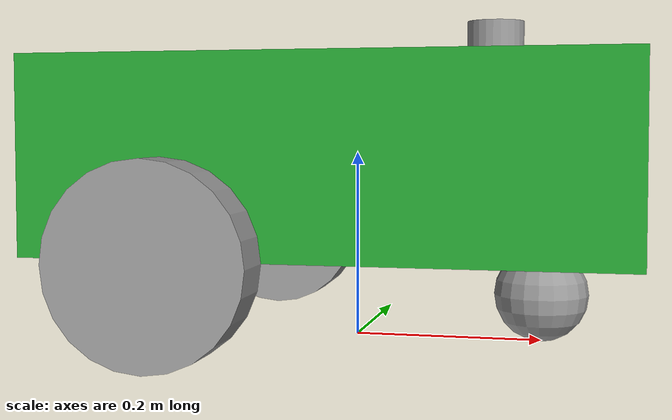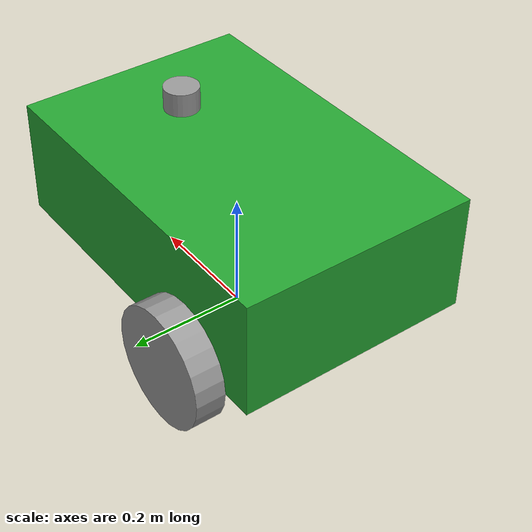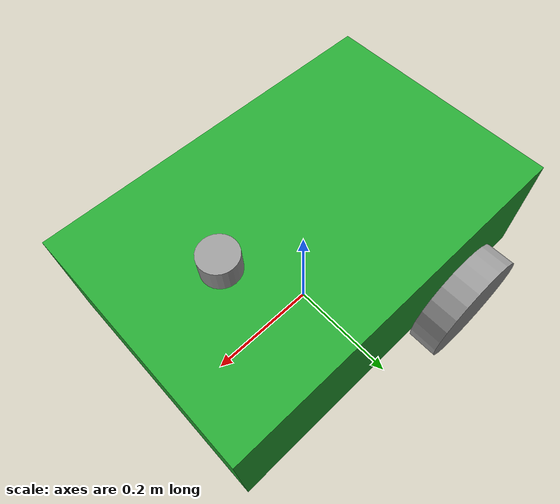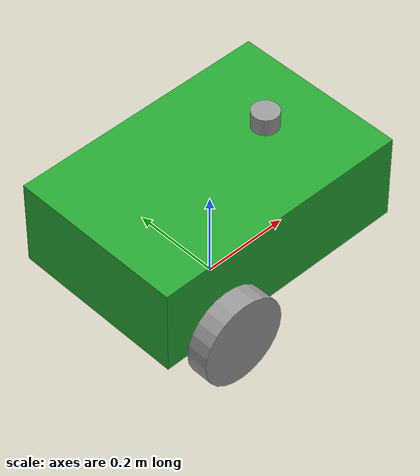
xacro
<?xml version="1.0"?>
<robot xmlns:xacro="http://www.ros.org/wiki/xacro">

    <xacro:property name="base_length" value="0.6" />
    <xacro:property name="base_width" value="0.4" />
    <xacro:property name="base_height" value="0.2" />
    <xacro:property name="wheel_radius" value="0.1" />
    <xacro:property name="wheel_length" value="0.05" />

    <link name="base_footprint" />

    <link name="base_link">
        <visual>
            <geometry>
                <box size="${base_length} ${base_width} ${base_height}" />
            </geometry>
            <origin xyz="0 0 ${base_height / 2.0}" rpy="0 0 0" />
            <material name="green" />
        </visual>
        <collision>
            <geometry>
                <box size="${base_length} ${base_width} ${base_height}" />
            </geometry>
            <origin xyz="0 0 ${base_height / 2.0}" rpy="0 0 0" />
        </collision>
        <xacro:box_inertia m="5.0" x="${base_length}" y="${base_width}" z="${base_height}"
                           o_xyz="0 0 ${base_height / 2.0}" o_rpy="0 0 0" />
    </link>

    <xacro:macro name="wheel_link" params="prefix">
        <link name="${prefix}_wheel_link">
            <visual>
                <geometry>
                    <cylinder radius="${wheel_radius}" length="${wheel_length}" />
                </geometry>
                <origin xyz="0 0 0" rpy="${pi / 2.0} 0 0" />
                <material name="gray" />
            </visual>
            <collision>
                <geometry>
                    <sphere radius="${wheel_radius}" />
                </geometry>
                <origin xyz="0 0 0" rpy="0 0 0" />
            </collision>
            <xacro:cylinder_inertia m="1.0" r="${wheel_radius}" l="${wheel_length}"
                                    o_xyz="0 0 0" o_rpy="${pi / 2.0} 0 0" />
        </link>
    </xacro:macro>

    <xacro:wheel_link prefix="right" />
    <xacro:wheel_link prefix="left" />

    <link name="caster_wheel_link">
        <visual>
            <geometry>
                <sphere radius="${wheel_radius / 2.0}" />
            </geometry>
            <origin xyz="0 0 0" rpy="0 0 0" />
            <material name="gray" />
        </visual>
        <collision>
            <geometry>
                <sphere radius="${wheel_radius / 2.0}" />
            </geometry>
            <origin xyz="0 0 0" rpy="0 0 0" />
        </collision>
        <xacro:sphere_inertia m="0.5" r="${wheel_radius / 2.0}"
                              o_xyz="0 0 0" o_rpy="0 0 0" />
    </link>

    <link name="laser_link">
        <visual>
            <geometry>
                <cylinder radius="0.03" length="0.04"/>
            </geometry>
            <origin xyz="0 0 0" rpy="0 0 0"/>
            <material name="gray"/>
        </visual>

        <collision>
            <geometry>
                <cylinder radius="0.03" length="0.04"/>
            </geometry>
            <origin xyz="0 0 0" rpy="0 0 0"/>
        </collision>

        <xacro:cylinder_inertia
            m="0.2"
            r="0.03"
            l="0.04"
            o_xyz="0 0 0"
            o_rpy="0 0 0"/>
    </link>

    <!-- LiDAR Mount -->
    <joint name="laser_joint" type="fixed">
        <parent link="base_link"/>
        <child link="laser_link"/>
        <origin xyz="0.15 0 ${base_height + 0.02}" rpy="0 0 0"/>
    </joint>

    <joint name="base_joint" type="fixed">
        <parent link="base_footprint" />
        <child link="base_link" />
        <origin xyz="0 0 ${wheel_radius}" rpy="0 0 0" />
    </joint>

    <joint name="base_right_wheel_joint" type="continuous">
        <parent link="base_link" />
        <child link="right_wheel_link" />
        <origin xyz="${-base_length / 4.0} ${-(base_width + wheel_length) / 2.0} 0" rpy="0 0 0" />
        <axis xyz="0 1 0" />
    </joint>

    <joint name="base_left_wheel_joint" type="continuous">
        <parent link="base_link" />
        <child link="left_wheel_link" />
        <origin xyz="${-base_length / 4.0} ${(base_width + wheel_length) / 2.0} 0" rpy="0 0 0" />
        <axis xyz="0 1 0" />
    </joint>

    <joint name="base_caster_wheel_joint" type="fixed">
        <parent link="base_link" />
        <child link="caster_wheel_link" />
        <origin xyz="${base_length / 3.0} 0 ${-wheel_radius / 2.0}" rpy="0 0 0" />
    </joint>

</robot>
